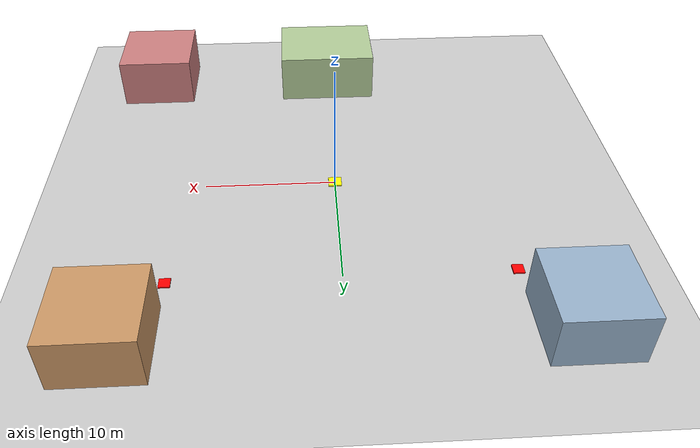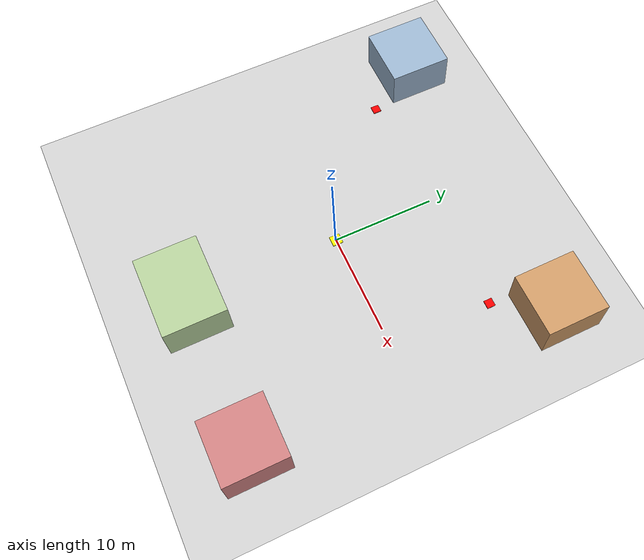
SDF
<sdf version="1.6">
 <world name="campus_world">
  <include><uri>model://sun</uri></include>
  <include><uri>model://ground_plane</uri></include>
  <plugin name="gazebo_ros_factory" filename="libgazebo_ros_factory.so"/>
  <plugin name="gazebo_ros_state" filename="libgazebo_ros_state.so"/>
  <model name="building_A">
   <static>true</static>
   <pose>15 15 2 0 0 0</pose>
   <link name="link">
    <collision name="collision"><geometry><box><size>6 6 4</size></box></geometry></collision>
    <visual name="visual">
     <geometry><box><size>6 6 4</size></box></geometry>
     <material><ambient>0.8 0.6 0.4 1</ambient><diffuse>0.8 0.6 0.4 1</diffuse></material>
    </visual>
   </link>
  </model>
  <model name="building_B">
   <static>true</static>
   <pose>-15 15 2 0 0 0</pose>
   <link name="link">
    <collision name="collision"><geometry><box><size>6 6 4</size></box></geometry></collision>
    <visual name="visual">
     <geometry><box><size>6 6 4</size></box></geometry>
     <material><ambient>0.6 0.7 0.8 1</ambient><diffuse>0.6 0.7 0.8 1</diffuse></material>
    </visual>
   </link>
  </model>
  <model name="building_C">
   <static>true</static>
   <pose>0 -15 2 0 0 0</pose>
   <link name="link">
    <collision name="collision"><geometry><box><size>8 6 4</size></box></geometry></collision>
    <visual name="visual">
     <geometry><box><size>8 6 4</size></box></geometry>
     <material><ambient>0.7 0.8 0.6 1</ambient><diffuse>0.7 0.8 0.6 1</diffuse></material>
    </visual>
   </link>
  </model>
  <model name="building_D">
   <static>true</static>
   <pose>15 -15 2 0 0 0</pose>
   <link name="link">
    <collision name="collision"><geometry><box><size>6 6 4</size></box></geometry></collision>
    <visual name="visual">
     <geometry><box><size>6 6 4</size></box></geometry>
     <material><ambient>0.8 0.5 0.5 1</ambient><diffuse>0.8 0.5 0.5 1</diffuse></material>
    </visual>
   </link>
  </model>
  <model name="delivery_point_1">
   <static>true</static>
   <pose>12 10 0.05 0 0 0</pose>
   <link name="link">
    <visual name="visual">
     <geometry><box><size>0.8 0.8 0.1</size></box></geometry>
     <material><ambient>1 0 0 1</ambient><diffuse>1 0 0 1</diffuse></material>
    </visual>
   </link>
  </model>
  <model name="delivery_point_2">
   <static>true</static>
   <pose>-12 10 0.05 0 0 0</pose>
   <link name="link">
    <visual name="visual">
     <geometry><box><size>0.8 0.8 0.1</size></box></geometry>
     <material><ambient>1 0 0 1</ambient><diffuse>1 0 0 1</diffuse></material>
    </visual>
   </link>
  </model>
  <model name="charging_station">
   <static>true</static>
   <pose>0 0 0.05 0 0 0</pose>
   <link name="link">
    <visual name="visual">
     <geometry><box><size>1.0 1.0 0.1</size></box></geometry>
     <material><ambient>1 1 0 1</ambient><diffuse>1 1 0 1</diffuse></material>
    </visual>
   </link>
  </model>
 </world>
</sdf>
